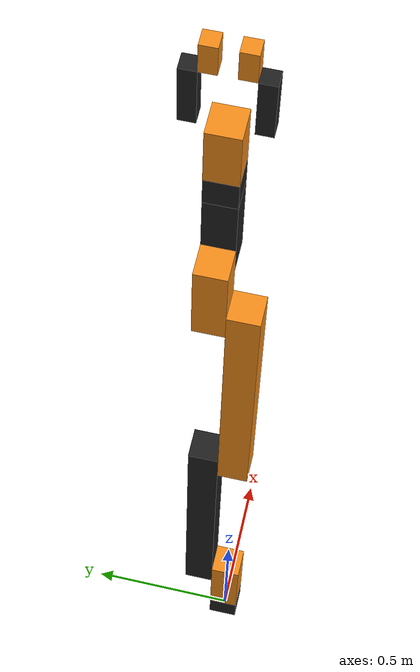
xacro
<?xml version="1.0"?>
<!-- Revolute-Revolute Manipulator -->
<robot name="rrbot" xmlns:xacro="http://www.ros.org/wiki/xacro">

  <!-- Constants for robot dimensions -->
  <xacro:property name="PI" value="3.1415926535897931"/>
  <xacro:property name="mass" value="0.5" /> <!-- arbitrary value for mass -->
  <xacro:property name="width" value="0.1" /> <!-- Square dimensions (widthxwidth) of beams -->
  <xacro:property name="height0" value="0.1" />
  <xacro:property name="height1" value="0.3" /> <!-- Link 1 -->
  <xacro:property name="height2" value="1" /> <!-- Link 2 -->
  <xacro:property name="height3" value="1" /> <!-- Link 3 -->
  <xacro:property name="height4" value="0.3" /> <!-- Link 4 -->
  <xacro:property name="height5" value="0.3" /> <!-- Link 5 -->
  <xacro:property name="height6" value="0.1" /> <!-- Link 6 -->
  <xacro:property name="axel_offset" value="0.05" /> <!-- Space btw top of beam and the each joint -->

  <!-- Import all Gazebo-customization elements, including Gazebo colors -->
  <xacro:include filename="$(find rrbot_description)/urdf/rrbot.gazebo" />
  <!-- Import Rviz colors -->
  <xacro:include filename="$(find rrbot_description)/urdf/materials.xacro" />

  <!-- gripper add -->
  <xacro:include filename="$(find gripper_description)/urdf/gripper.xacro" />

  <joint name="link6_to_gripper_base_link" type="fixed">
    <parent link="link6"/>
    <child link="gripper_base_link"/>
    <origin xyz="0 0 ${height6}" rpy="0 0 0"/>
  </joint>

  <!-- Used for fixing robot to Gazebo 'base_link' -->
  <link name="world"/>

  <joint name="fixed" type="fixed">
    <parent link="world"/>
    <child link="base_link"/>
  </joint>

  <!-- Base Link -->
  <link name="base_link">
    <collision>
      <origin xyz="0 0 ${height0/2}" rpy="0 0 0"/>
      <geometry>
	<box size="${width} ${width} ${height0}"/>
      </geometry>
    </collision>

    <visual>
      <origin xyz="0 0 ${height0/2}" rpy="0 0 0"/>
      <geometry>
	<box size="${width} ${width} ${height0}"/>
      </geometry>
      <material name="black"/>
    </visual>

    <inertial>
      <origin xyz="0 0 ${height0/2}" rpy="0 0 0"/>
      <mass value="${mass}"/>
      <inertia
	  ixx="${mass / 12.0 * (width*width + height0*height0)}" ixy="0.0" ixz="0.0"
	  iyy="${mass / 12.0 * (height0*height0 + width*width)}" iyz="0.0"
	  izz="${mass / 12.0 * (width*width + width*width)}"/>
    </inertial>
  </link>

  <joint name="joint0" type="continuous">
    <parent link="base_link"/>
    <child link="link1"/>
    <origin xyz="0 0 ${height0}" rpy="0 0 0"/>
    <axis xyz="0 0 1"/>
    <dynamics damping="0.7"/>
  </joint>

  <link name="link1">
    <collision>
      <origin xyz="0 0 ${height1/2}" rpy="0 0 0"/>
      <geometry>
	<box size="${width} ${width} ${height1}"/>
      </geometry>
    </collision>

    <visual>
      <origin xyz="0 0 ${height1/2}" rpy="0 0 0"/>
      <geometry>
	<box size="${width} ${width} ${height1}"/>
      </geometry>
      <material name="orange"/>
    </visual>

    <inertial>
      <origin xyz="0 0 ${height1/2}" rpy="0 0 0"/>
      <mass value="${mass}"/>
      <inertia
	  ixx="${mass / 12.0 * (width*width + height1*height1)}" ixy="0.0" ixz="0.0"
	  iyy="${mass / 12.0 * (height1*height1 + width*width)}" iyz="0.0"
	  izz="${mass / 12.0 * (width*width + width*width)}"/>
    </inertial>
  </link>

  <joint name="joint1" type="continuous">
    <parent link="link1"/>
    <child link="link2"/>
    <origin xyz="0 ${width} ${height1 - axel_offset}" rpy="0 0 0"/>
    <axis xyz="0 1 0"/>
    <dynamics damping="0.7"/>
  </joint>

  <link name="link2">
    <collision>
      <origin xyz="0 0 ${height2/2 - axel_offset}" rpy="0 0 0"/>
      <geometry>
	<box size="${width} ${width} ${height2}"/>
      </geometry>
    </collision>

    <visual>
      <origin xyz="0 0 ${height2/2 - axel_offset}" rpy="0 0 0"/>
      <geometry>
	<box size="${width} ${width} ${height2}"/>
      </geometry>
      <material name="black"/>
    </visual>

    <inertial>
      <origin xyz="0 0 ${height2/2 - axel_offset}" rpy="0 0 0"/>
      <mass value="${mass}"/>
      <inertia
	  ixx="${mass / 12.0 * (width*width + height2*height2)}" ixy="0.0" ixz="0.0"
	  iyy="${mass / 12.0 * (height2*height2 + width*width)}" iyz="0.0"
	  izz="${mass / 12.0 * (width*width + width*width)}"/>
    </inertial>
  </link>

  <joint name="joint2" type="continuous">
    <parent link="link2"/>
    <child link="link3"/>
    <origin xyz="0 ${-width} ${height2 - axel_offset*2}" rpy="0 0 0"/>
    <axis xyz="0 1 0"/>
    <dynamics damping="0.7"/>
  </joint>

  <link name="link3">
    <collision>
      <origin xyz="0 0 ${height3/2 - axel_offset}" rpy="0 0 0"/>
      <geometry>
	<box size="${width} ${width} ${height3}"/>
      </geometry>
    </collision>

    <visual>
      <origin xyz="0 0 ${height3/2 - axel_offset}" rpy="0 0 0"/>
      <geometry>
	<box size="${width} ${width} ${height3}"/>
      </geometry>
      <material name="orange"/>
    </visual>

    <inertial>
      <origin xyz="0 0 ${height3/2 - axel_offset}" rpy="0 0 0"/>
      <mass value="${mass}"/>
      <inertia
	  ixx="${mass / 12.0 * (width*width + height3*height3)}" ixy="0.0" ixz="0.0"
	  iyy="${mass / 12.0 * (height3*height3 + width*width)}" iyz="0.0"
	  izz="${mass / 12.0 * (width*width + width*width)}"/>
    </inertial>
  </link>

  <joint name="joint3" type="continuous">
    <parent link="link3"/>
    <child link="link4"/>
    <origin xyz="0 ${width} ${height3 - axel_offset*2}" rpy="0 0 0"/>
    <axis xyz="0 1 0"/>
    <dynamics damping="0.7"/>
  </joint>

  <!-- Top Link -->
  <link name="link4">
    <collision>
      <origin xyz="0 0 ${height4/2 - axel_offset}" rpy="0 0 0"/>
      <geometry>
	<box size="${width} ${width} ${height4}"/>
      </geometry>
    </collision>

    <visual>
      <origin xyz="0 0 ${height4/2 - axel_offset}" rpy="0 0 0"/>
      <geometry>
	<box size="${width} ${width} ${height4}"/>
      </geometry>
      <material name="orange"/>
    </visual>

    <inertial>
      <origin xyz="0 0 ${height4/2 - axel_offset}" rpy="0 0 0"/>
      <mass value="${mass}"/>
      <inertia
	  ixx="${mass / 12.0 * (width*width + height4*height4)}" ixy="0.0" ixz="0.0"
	  iyy="${mass / 12.0 * (height4*height4 + width*width)}" iyz="0.0"
	  izz="${mass / 12.0 * (width*width + width*width)}"/>
    </inertial>
  </link>

  <joint name="joint4" type="continuous">
    <parent link="link4"/>
    <child link="link5"/>
    <origin xyz="${width} 0 ${height4 - axel_offset*2}" rpy="0 0 0"/>
    <axis xyz="1 0 0"/>
    <dynamics damping="0.7"/>
  </joint>

  <!-- Top Link -->
  <link name="link5">
    <collision>
      <origin xyz="0 0 ${height5/2 - axel_offset}" rpy="0 0 0"/>
      <geometry>
	<box size="${width} ${width} ${height5}"/>
      </geometry>
    </collision>

    <visual>
      <origin xyz="0 0 ${height5/2 - axel_offset}" rpy="0 0 0"/>
      <geometry>
	<box size="${width} ${width} ${height5}"/>
      </geometry>
      <material name="black"/>
    </visual>

    <inertial>
      <origin xyz="0 0 ${height5/2 - axel_offset}" rpy="0 0 0"/>
      <mass value="${mass}"/>
      <inertia
	  ixx="${mass / 12.0 * (width*width + height5*height5)}" ixy="0.0" ixz="0.0"
	  iyy="${mass / 12.0 * (height5*height5 + width*width)}" iyz="0.0"
	  izz="${mass / 12.0 * (width*width + width*width)}"/>
    </inertial>
  </link>

  <joint name="joint5" type="continuous">
    <parent link="link5"/>
    <child link="link6"/>
    <origin xyz="0 0 ${height5- axel_offset}" rpy="0 0 0"/>
    <axis xyz="0 0 1"/>
    <dynamics damping="0.7"/>
  </joint>

  <!-- Top Link -->
  <link name="link6">
    <collision>
      <origin xyz="0 0 ${height6/2}" rpy="0 0 0"/>
      <geometry>
	<box size="${width} ${width} ${height6}"/>
      </geometry>
    </collision>

    <visual>
      <origin xyz="0 0 ${height6/2}" rpy="0 0 0"/>
      <geometry>
	<box size="${width} ${width} ${height6}"/>
      </geometry>
      <material name="black"/>
    </visual>

    <inertial>
      <origin xyz="0 0 ${height6}" rpy="0 0 0"/>
      <mass value="${mass}"/>
      <inertia
	  ixx="${mass / 12.0 * (width*width + height6*height6)}" ixy="0.0" ixz="0.0"
	  iyy="${mass / 12.0 * (height6*height6 + width*width)}" iyz="0.0"
	  izz="${mass / 12.0 * (width*width + width*width)}"/>
    </inertial>
  </link>

  <transmission name="tran0">
    <type>transmission_interface/SimpleTransmission</type>
    <joint name="joint0">
      <hardwareInterface>hardware_interface/PositionJointInterface</hardwareInterface>
    </joint>
    <actuator name="motor0">
      <hardwareInterface>hardware_interface/PositionJointInterface</hardwareInterface>
      <mechanicalReduction>1</mechanicalReduction>
    </actuator>
  </transmission>

  <transmission name="tran1">
    <type>transmission_interface/SimpleTransmission</type>
    <joint name="joint1">
      <hardwareInterface>hardware_interface/PositionJointInterface</hardwareInterface>
    </joint>
    <actuator name="motor1">
      <hardwareInterface>hardware_interface/PositionJointInterface</hardwareInterface>
      <mechanicalReduction>1</mechanicalReduction>
    </actuator>
  </transmission>

  <transmission name="tran2">
    <type>transmission_interface/SimpleTransmission</type>
    <joint name="joint2">
      <hardwareInterface>hardware_interface/PositionJointInterface</hardwareInterface>
    </joint>
    <actuator name="motor2">
      <hardwareInterface>hardware_interface/PositionJointInterface</hardwareInterface>
      <mechanicalReduction>1</mechanicalReduction>
    </actuator>
  </transmission>

  <transmission name="tran3">
    <type>transmission_interface/SimpleTransmission</type>
    <joint name="joint3">
      <hardwareInterface>hardware_interface/PositionJointInterface</hardwareInterface>
    </joint>
    <actuator name="motor3">
      <hardwareInterface>hardware_interface/PositionJointInterface</hardwareInterface>
      <mechanicalReduction>1</mechanicalReduction>
    </actuator>
  </transmission>

  <transmission name="tran4">
    <type>transmission_interface/SimpleTransmission</type>
    <joint name="joint4">
      <hardwareInterface>hardware_interface/PositionJointInterface</hardwareInterface>
    </joint>
    <actuator name="motor4">
      <hardwareInterface>hardware_interface/PositionJointInterface</hardwareInterface>
      <mechanicalReduction>1</mechanicalReduction>
    </actuator>
  </transmission>

  <transmission name="tran5">
    <type>transmission_interface/SimpleTransmission</type>
    <joint name="joint5">
      <hardwareInterface>hardware_interface/PositionJointInterface</hardwareInterface>
    </joint>
    <actuator name="motor5">
      <hardwareInterface>hardware_interface/PositionJointInterface</hardwareInterface>
      <mechanicalReduction>1</mechanicalReduction>
    </actuator>
  </transmission>

</robot>

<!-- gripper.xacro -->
<!-- Revolute-Revolute Manipulator -->
<robot name="gripper" xmlns:xacro="http://www.ros.org/wiki/xacro">
    <xacro:include filename="$(find gripper_description)/urdf/gripper.gazebo" />

    <xacro:property name="gripper_base_height" value="0.2"/>
    <xacro:property name="finger_width" value="0.05"/>
    <xacro:property name="finger_height" value="0.2"/>

    <link name="gripper_base_link">
        <collision>
            <origin xyz="0 0 ${gripper_base_height/2}" rpy="0 0 0"/>
            <geometry>
                <box size="${width} ${width} ${gripper_base_height}"/>
            </geometry>
        </collision>

        <visual>
            <origin xyz="0 0 ${gripper_base_height/2}" rpy="0 0 0"/>
            <geometry>
                <box size="${width} ${width} ${gripper_base_height}"/>
            </geometry>
            <material name="orange"/>
        </visual>

        <inertial>
            <origin xyz="0 0 ${gripper_base_height/2}" rpy="0 0 0"/>
            <mass value="0.002"/>
            <inertia
            ixx="${mass / 12.0 * (width*width + gripper_base_height*gripper_base_height)}" ixy="0.0" ixz="0.0"
            iyy="${mass / 12.0 * (gripper_base_height*gripper_base_height + width*width)}" iyz="0.0"
            izz="${mass / 12.0 * (width*width + width*width)}"/>
        </inertial>
    </link>

    <joint name="gripper_base_to_finger_right" type="continuous">
        <parent link="gripper_base_link"/>
        <child link="finger_right"/>
        <origin xyz="0 0 ${gripper_base_height}" rpy="0 0 0"/>
        <axis xyz ="1 0 0"/>
    </joint>

    <link name="finger_right">
        <collision>
            <origin xyz="0 ${width} ${finger_height/2}" rpy="0 0 0"/>
            <geometry>
                <box size="${finger_width} ${finger_width} ${finger_height}"/>
            </geometry>
        </collision>

        <visual>
            <origin xyz="0 ${width} ${finger_height/2}" rpy="0 0 0"/>
            <geometry>
                <box size="${finger_width} ${finger_width} ${finger_height}"/>
            </geometry>
            <material name="black"/>
        </visual>

        <inertial>
            <origin xyz="0 ${width} ${finger_height/2}" rpy="0 0 0"/>
            <mass value="0.001"/>
            <inertia
            ixx="${mass / 12.0 * (finger_width*finger_width + finger_height*finger_height)}" ixy="0.0" ixz="0.0"
            iyy="${mass / 12.0 * (finger_height*finger_height + finger_width*finger_width)}" iyz="0.0"
            izz="${mass / 12.0 * (finger_width*finger_width + finger_width*finger_width)}"/>
        </inertial>
    </link>

    <joint name="gripper_base_to_finger_left" type="continuous">
        <parent link="gripper_base_link"/>
        <child link="finger_left"/>
        <origin xyz="0 0 ${gripper_base_height}" rpy="0 0 0"/>
        <axis xyz ="-1 0 0"/>
    </joint>

    <link name="finger_left">
        <collision>
            <origin xyz="0 ${-width} ${finger_height/2}" rpy="0 0 0"/>
            <geometry>
                <box size="${finger_width} ${finger_width} ${finger_height}"/>
            </geometry>
        </collision>

        <visual>
            <origin xyz="0 ${-width} ${finger_height/2}" rpy="0 0 0"/>
            <geometry>
                <box size="${finger_width} ${finger_width} ${finger_height}"/>
            </geometry>
            <material name="black"/>
        </visual>

        <inertial>
            <origin xyz="0 ${-width} ${finger_height/2}" rpy="0 0 0"/>
            <mass value="0.001"/>
            <inertia
            ixx="${mass / 12.0 * (finger_width*finger_width + finger_height*finger_height)}" ixy="0.0" ixz="0.0"
            iyy="${mass / 12.0 * (finger_height*finger_height + finger_width*finger_width)}" iyz="0.0"
            izz="${mass / 12.0 * (finger_width*finger_width + finger_width*finger_width)}"/>
        </inertial>
    </link>

    <joint name="finger_left_to_finger_left_tip" type="fixed">
        <parent link="finger_left"/>
        <child link="finger_left_tip"/>
        <origin xyz="0 0 ${finger_height}" rpy="0 0 0"/>
    </joint>

    <link name="finger_left_tip">
        <collision>
            <origin xyz="0 ${-finger_width} ${finger_height/4}" rpy="0 0 0"/>
            <geometry>
                <box size="${finger_width} ${finger_width} ${finger_height/2}"/>
            </geometry>
        </collision>

        <visual>
            <origin xyz="0 ${-finger_width} ${finger_height/4}" rpy="0 0 0"/>
            <geometry>
                <box size="${finger_width} ${finger_width} ${finger_height/2}"/>
            </geometry>
            <material name="orange"/>
        </visual>

        <inertial>
            <origin xyz="0 ${-finger_width} ${finger_height/4}" rpy="0 0 0"/>
            <mass value="0.001"/>
            <inertia
            ixx="${mass / 12.0 * (finger_width*finger_width + finger_height/2*finger_height/2)}" ixy="0.0" ixz="0.0"
            iyy="${mass / 12.0 * (finger_height/2*finger_height/2 + finger_width*finger_width)}" iyz="0.0"
            izz="${mass / 12.0 * (finger_width*finger_width + finger_width*finger_width)}"/>
        </inertial>
    </link>

    <joint name="finger_right_to_finger_right_tip" type="fixed">
        <parent link="finger_right"/>
        <child link="finger_right_tip"/>
        <origin xyz="0 0 ${finger_height}" rpy="0 0 0"/>
    </joint>

    <link name="finger_right_tip">
        <collision>
            <origin xyz="0 ${finger_width} ${finger_height/4}" rpy="0 0 0"/>
            <geometry>
                <box size="${finger_width} ${finger_width} ${finger_height/2}"/>
            </geometry>
        </collision>

        <visual>
            <origin xyz="0 ${finger_width} ${finger_height/4}" rpy="0 0 0"/>
            <geometry>
                <box size="${finger_width} ${finger_width} ${finger_height/2}"/>
            </geometry>
            <material name="orange"/>
        </visual>

        <inertial>
            <origin xyz="0 ${finger_width} ${finger_height/4}" rpy="0 0 0"/>
            <mass value="0.001"/>
            <inertia
            ixx="${mass / 12.0 * (finger_width*finger_width + finger_height/2*finger_height/2)}" ixy="0.0" ixz="0.0"
            iyy="${mass / 12.0 * (finger_height/2*finger_height/2 + finger_width*finger_width)}" iyz="0.0"
            izz="${mass / 12.0 * (finger_width*finger_width + finger_width*finger_width)}"/>
        </inertial>
    </link>

    <transmission name="gripper_right">
        <type>transmission_interface/SimpleTransmission</type>
        <joint name="gripper_base_to_finger_right">
            <hardwareInterface>hardware_interface/PositionJointInterface</hardwareInterface>
        </joint>
        <actuator name="motorRight">
            <hardwareInterface>hardware_interface/PositionJointInterface</hardwareInterface>
            <mechanicalReduction>1</mechanicalReduction>
        </actuator>
    </transmission>

    <transmission name="gripper_left">
        <type>transmission_interface/SimpleTransmission</type>
        <joint name="gripper_base_to_finger_left">
            <hardwareInterface>hardware_interface/PositionJointInterface</hardwareInterface>
        </joint>
        <actuator name="motorLeft">
            <hardwareInterface>hardware_interface/PositionJointInterface</hardwareInterface>
            <mechanicalReduction>1</mechanicalReduction>
        </actuator>
    </transmission>

</robot>
